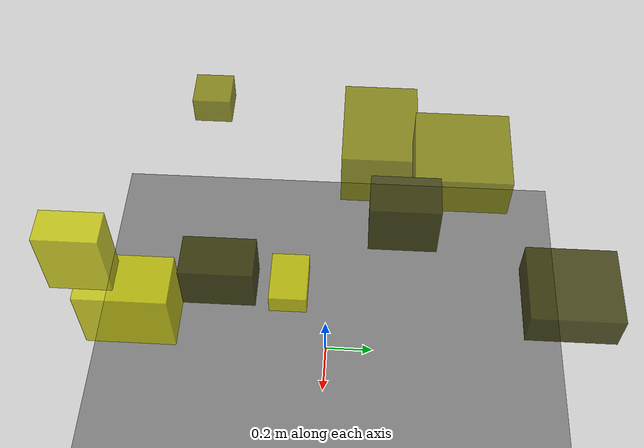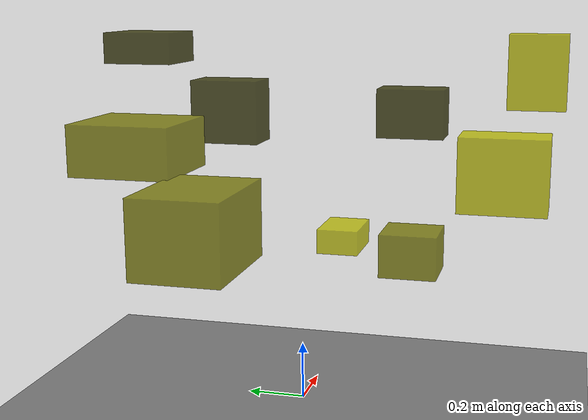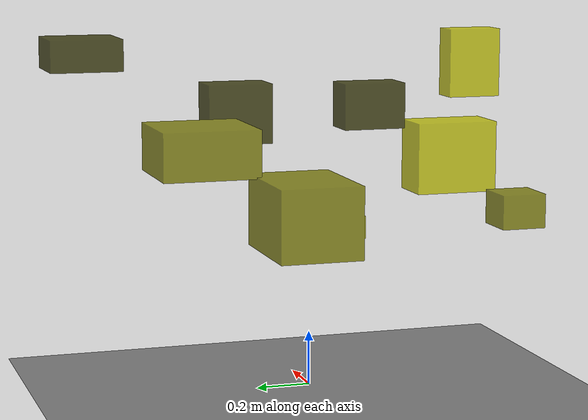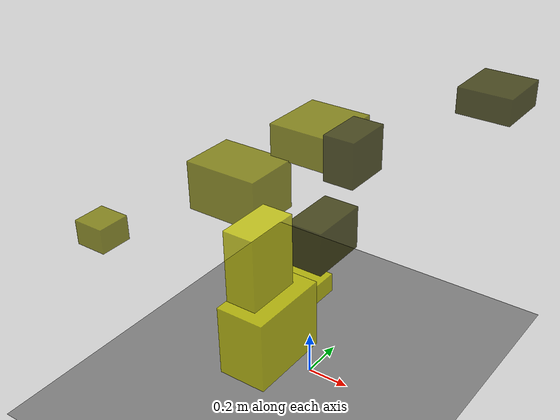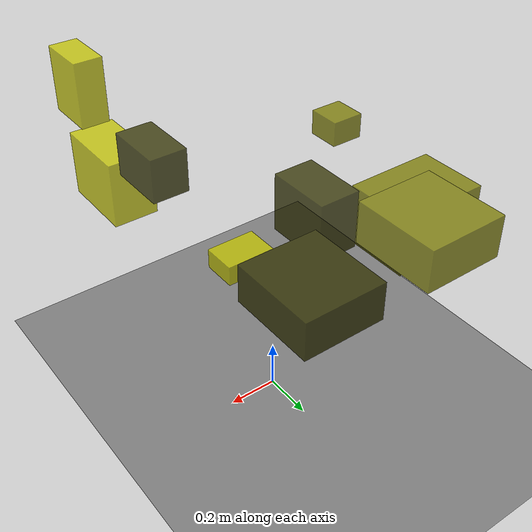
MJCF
<?xml version="1.0"?>
<mujoco model="obstacle_scene">
  <compiler angle="radian" coordinate="local"/>
  <option timestep="0.001" gravity="0 0 -9.81"/>

  <asset>
    <material name="obstacle_mat" rgba="0.8 0.8 0.0 0.8"/>
    <material name="ground_mat" rgba="0.5 0.5 0.5 1"/>
  </asset>

  <worldbody>
    <!-- Ground plane -->
    <geom name="ground" type="plane" size="3 3 0.1" material="ground_mat"/>

    <!-- Obstacles -->
    <body name="obstacle_0" pos="0.454705 0.748559 1.208276">
      <geom name="obs_0" type="box" size="0.124897 0.135347 0.059350" rgba="0.2 0.2 0.0 0.8"/>
    </body>
    <body name="obstacle_1" pos="-0.273938 0.478261 0.933618">
      <geom name="obs_1" type="box" size="0.160764 0.169227 0.083437" rgba="0.5 0.5 0.0 0.8"/>
    </body>
    <body name="obstacle_2" pos="0.288403 -0.663438 0.791964">
      <geom name="obs_2" type="box" size="0.092517 0.158653 0.136010" rgba="0.8 0.8 0.0 0.8"/>
    </body>
    <body name="obstacle_3" pos="0.289771 -0.332464 0.999848">
      <geom name="obs_3" type="box" size="0.072241 0.119572 0.086696" rgba="0.2 0.2 0.0 0.8"/>
    </body>
    <body name="obstacle_4" pos="-0.522936 0.184314 0.732741">
      <geom name="obs_4" type="box" size="0.190548 0.142415 0.123707" rgba="0.5 0.5 0.0 0.8"/>
    </body>
    <body name="obstacle_5" pos="0.056292 -0.132741 0.588455">
      <geom name="obs_5" type="box" size="0.100555 0.070125 0.041773" rgba="0.8 0.8 0.0 0.8"/>
    </body>
    <body name="obstacle_6" pos="0.038132 0.267593 1.019191">
      <geom name="obs_6" type="box" size="0.074500 0.117030 0.107056" rgba="0.2 0.2 0.0 0.8"/>
    </body>
    <body name="obstacle_7" pos="-0.715286 -0.492887 0.756449">
      <geom name="obs_7" type="box" size="0.074049 0.075024 0.056980" rgba="0.5 0.5 0.0 0.8"/>
    </body>
    <body name="obstacle_8" pos="0.337699 -0.764652 1.147979">
      <geom name="obs_8" type="box" size="0.056716 0.101585 0.130899" rgba="0.8 0.8 0.0 0.8"/>
    </body>
  </worldbody>
</mujoco>
